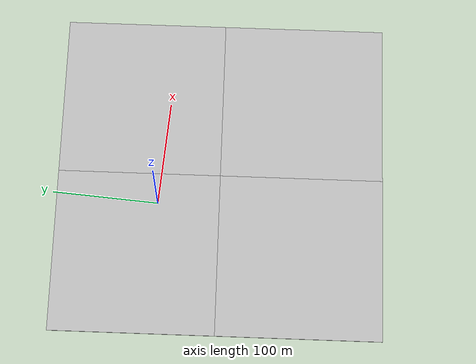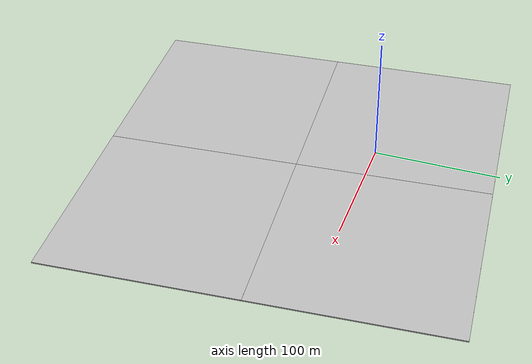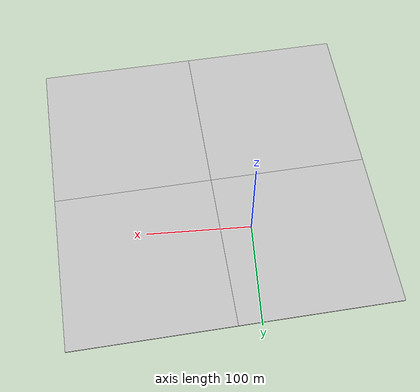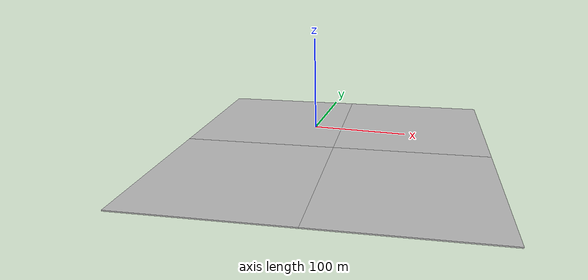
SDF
<sdf version="1.7">
 <world name="default">
  <light name="sun" type="directional">
   <cast_shadows>0</cast_shadows>
   <diffuse>1 1 1 1</diffuse>
   <specular>0.2 0.2 0.2 1</specular>
   <attenuation>
    <range>1000</range>
    <constant>0.9</constant>
    <linear>0.01</linear>
    <quadratic>0.001</quadratic>
   </attenuation>
   <direction>0 0 -10</direction>
   <spot><inner_angle>0</inner_angle><outer_angle>0</outer_angle><falloff>0</falloff></spot>
  </light>
  <gravity>0 0 -9.8</gravity>
  <magnetic_field>6e-06 2.3e-05 -4.2e-05</magnetic_field>
  <atmosphere type="adiabatic"/>
  <physics type="ode">
   <max_step_size>0.001</max_step_size>
   <real_time_factor>1</real_time_factor>
   <real_time_update_rate>1000</real_time_update_rate>
  </physics>
  <scene><ambient>0.4 0.4 0.4 1</ambient><background>0.7 0.7 0.7 1</background><shadows>1</shadows></scene>
  <audio><device>default</device></audio>
  <spherical_coordinates>
   <surface_model>EARTH_WGS84</surface_model>
   <latitude_deg>0</latitude_deg>
   <longitude_deg>0</longitude_deg>
   <elevation>0</elevation>
   <heading_deg>0</heading_deg>
  </spherical_coordinates>
  <model name="map_satellite_36.0834057_140.0767_155_155">
   <static>1</static>
   <link name="link">
    <collision name="collision">
     <pose>0 0 -0.5 0 -0 0</pose>
     <geometry><box><size>308.867 308.867 1</size></box></geometry>
    </collision>
    <visual name="visual0_0">
     <pose>-77.2167 77.2167 -0.5 0 -0 1.5708</pose>
     <geometry><box><size>154.433 154.433 1</size></box></geometry>
     <material>
      <script>
       <uri>model://map_satellite_36.0834057_140.0767_155_155/materials/scripts</uri>
       <uri>model://map_satellite_36.0834057_140.0767_155_155/materials/textures</uri>
       <name>map_satellite_36.0834057_140.0767_155_155/0_0</name>
      </script>
     </material>
    </visual>
    <visual name="visual0_1">
     <pose>77.2167 77.2167 -0.5 0 -0 1.5708</pose>
     <geometry><box><size>154.433 154.433 1</size></box></geometry>
     <material>
      <script>
       <uri>model://map_satellite_36.0834057_140.0767_155_155/materials/scripts</uri>
       <uri>model://map_satellite_36.0834057_140.0767_155_155/materials/textures</uri>
       <name>map_satellite_36.0834057_140.0767_155_155/0_1</name>
      </script>
     </material>
    </visual>
    <visual name="visual1_0">
     <pose>-77.2167 -77.2167 -0.5 0 -0 1.5708</pose>
     <geometry><box><size>154.433 154.433 1</size></box></geometry>
     <material>
      <script>
       <uri>model://map_satellite_36.0834057_140.0767_155_155/materials/scripts</uri>
       <uri>model://map_satellite_36.0834057_140.0767_155_155/materials/textures</uri>
       <name>map_satellite_36.0834057_140.0767_155_155/1_0</name>
      </script>
     </material>
    </visual>
    <visual name="visual1_1">
     <pose>77.2167 -77.2167 -0.5 0 -0 1.5708</pose>
     <geometry><box><size>154.433 154.433 1</size></box></geometry>
     <material>
      <script>
       <uri>model://map_satellite_36.0834057_140.0767_155_155/materials/scripts</uri>
       <uri>model://map_satellite_36.0834057_140.0767_155_155/materials/textures</uri>
       <name>map_satellite_36.0834057_140.0767_155_155/1_1</name>
      </script>
     </material>
    </visual>
   </link>
   <pose>34.2516 -55.3538 0 0 0 -3.06098</pose>
  </model>
 </world>
</sdf>
